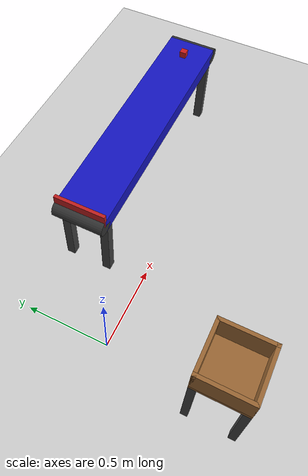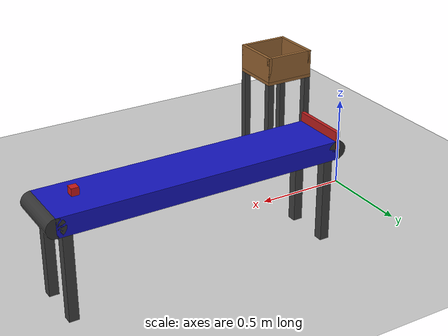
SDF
<?xml version="1.0" ?>
<sdf version="1.8">
  <world name="gripper_cell">
    <physics name="1ms" type="ignition.physics.sim" default="true">
      <max_step_size>0.001</max_step_size>
      <real_time_factor>1.0</real_time_factor>
    </physics>
    <plugin filename="gz-sim-physics-system" name="gz::sim::systems::Physics">
      <gravity>0 0 -9.81</gravity>
    </plugin>
    <plugin filename="gz-sim-scene-broadcaster-system" name="gz::sim::systems::SceneBroadcaster"/>
    <plugin filename="gz-sim-user-commands-system" name="gz::sim::systems::UserCommands"/>
    <plugin filename="gz-sim-contact-system" name="gz::sim::systems::Contact"/>
    <scene>
      <ambient>1.0 1.0 1.0</ambient>
      <background>0.8 0.8 0.8</background>
      <grid>true</grid>
    </scene>
    <light type="directional" name="sun">
      <cast_shadows>true</cast_shadows>
      <pose>0 0 10 0 0 0</pose>
      <diffuse>0.8 0.8 0.8 1</diffuse>
      <specular>0.2 0.2 0.2 1</specular>
      <direction>-0.5 0.1 -0.9</direction>
    </light>
    <model name="ground_plane">
      <static>true</static>
      <link name="link">
        <collision name="collision">
          <geometry>
            <plane>
              <normal>0 0 1</normal>
              <size>100 100</size>
            </plane>
          </geometry>
        </collision>
        <visual name="visual">
          <geometry>
            <plane>
              <normal>0 0 1</normal>
              <size>100 100</size>
            </plane>
          </geometry>
          <material>
            <ambient>0.8 0.8 0.8 1</ambient>
            <diffuse>0.8 0.8 0.8 1</diffuse>
          </material>
        </visual>
      </link>
    </model>

    <model name="belt_track">
      <pose>1.15 0.35 0 0 0 0</pose>
      <static>1</static>
      <link name="base_link">
        <pose>0 0 0.50 0 0 0</pose>
        <collision name="belt_col">
          <geometry><box><size>1.5 0.30 0.10</size></box></geometry>
          <surface><friction><ode><mu>0.7</mu><mu2>150</mu2><fdir1>0 1 0</fdir1></ode></friction></surface>
        </collision>
        <visual name="belt_vis">
          <geometry><box><size>1.5 0.30 0.10</size></box></geometry>
          <material><ambient>0.05 0.05 0.6 1</ambient><diffuse>0.08 0.08 0.75 1</diffuse></material>
        </visual>
        <!-- end rollers: radius = belt_height/2 = 0.05 -> flush with belt top -->
        <collision name="roll_a_col">
          <pose>0.75 0 0 -1.5708 0 0</pose>
          <geometry><cylinder><length>0.30</length><radius>0.05</radius></cylinder></geometry>
        </collision>
        <visual name="roll_a_vis">
          <pose>0.75 0 0 -1.5708 0 0</pose>
          <geometry><cylinder><length>0.30</length><radius>0.05</radius></cylinder></geometry>
          <material><ambient>0.2 0.2 0.2 1</ambient><diffuse>0.2 0.2 0.2 1</diffuse></material>
        </visual>
        <collision name="roll_b_col">
          <pose>-0.75 0 0 -1.5708 0 0</pose>
          <geometry><cylinder><length>0.30</length><radius>0.05</radius></cylinder></geometry>
        </collision>
        <visual name="roll_b_vis">
          <pose>-0.75 0 0 -1.5708 0 0</pose>
          <geometry><cylinder><length>0.30</length><radius>0.05</radius></cylinder></geometry>
          <material><ambient>0.2 0.2 0.2 1</ambient><diffuse>0.2 0.2 0.2 1</diffuse></material>
        </visual>
      </link>
      <!-- support legs (visual only), floor -> belt underside at z=0.45 -->
      <link name="leg_1"><pose>0.7 0.12 0.225 0 0 0</pose><visual name="v"><geometry><box><size>0.05 0.05 0.45</size></box></geometry><material><ambient>0.25 0.25 0.25 1</ambient><diffuse>0.25 0.25 0.25 1</diffuse></material></visual></link>
      <link name="leg_2"><pose>0.7 -0.12 0.225 0 0 0</pose><visual name="v"><geometry><box><size>0.05 0.05 0.45</size></box></geometry><material><ambient>0.25 0.25 0.25 1</ambient><diffuse>0.25 0.25 0.25 1</diffuse></material></visual></link>
      <link name="leg_3"><pose>-0.7 0.12 0.225 0 0 0</pose><visual name="v"><geometry><box><size>0.05 0.05 0.45</size></box></geometry><material><ambient>0.25 0.25 0.25 1</ambient><diffuse>0.25 0.25 0.25 1</diffuse></material></visual></link>
      <link name="leg_4"><pose>-0.7 -0.12 0.225 0 0 0</pose><visual name="v"><geometry><box><size>0.05 0.05 0.45</size></box></geometry><material><ambient>0.25 0.25 0.25 1</ambient><diffuse>0.25 0.25 0.25 1</diffuse></material></visual></link>
      <plugin filename="gz-sim-track-controller-system" name="gz::sim::systems::TrackController">
        <link>base_link</link>
      </plugin>
    </model>

    <model name="conveyor_end_stop">
      <static>true</static>
      <pose>0.40 0.35 0 0 0 0</pose>
      <link name="stop">
        <pose>0 0 0.55 0 0 0</pose>
        <collision name="collision">
          <geometry><box><size>0.02 0.30 0.10</size></box></geometry>
        </collision>
        <sensor name="end_contact" type="contact">
          <contact><collision>collision</collision></contact>
          <update_rate>30</update_rate>
          <always_on>true</always_on>
        </sensor>
        <visual name="visual">
          <geometry><box><size>0.02 0.30 0.10</size></box></geometry>
          <material><ambient>0.6 0.1 0.1 1</ambient><diffuse>0.75 0.12 0.12 1</diffuse></material>
        </visual>
      </link>
    </model>

    <model name="collection_box">
      <static>true</static>
      <pose>0.0 -0.65 0.45 0 0 0</pose>
      <link name="bottom">
        <pose>0 0 0.01 0 0 0</pose>
        <collision name="collision"><geometry><box><size>0.30 0.30 0.02</size></box></geometry></collision>
        <visual name="visual">
          <geometry><box><size>0.30 0.30 0.02</size></box></geometry>
          <material><ambient>0.6 0.4 0.2 1</ambient><diffuse>0.6 0.4 0.2 1</diffuse></material>
        </visual>
      </link>
      <link name="wall_pos_x">
        <pose>0.14 0 0.095 0 0 0</pose>
        <collision name="collision"><geometry><box><size>0.02 0.30 0.15</size></box></geometry></collision>
        <visual name="visual">
          <geometry><box><size>0.02 0.30 0.15</size></box></geometry>
          <material><ambient>0.6 0.4 0.2 1</ambient><diffuse>0.6 0.4 0.2 1</diffuse></material>
        </visual>
      </link>
      <link name="wall_neg_x">
        <pose>-0.14 0 0.095 0 0 0</pose>
        <collision name="collision"><geometry><box><size>0.02 0.30 0.15</size></box></geometry></collision>
        <visual name="visual">
          <geometry><box><size>0.02 0.30 0.15</size></box></geometry>
          <material><ambient>0.6 0.4 0.2 1</ambient><diffuse>0.6 0.4 0.2 1</diffuse></material>
        </visual>
      </link>
      <link name="wall_pos_y">
        <pose>0 0.14 0.095 0 0 0</pose>
        <collision name="collision"><geometry><box><size>0.30 0.02 0.15</size></box></geometry></collision>
        <visual name="visual">
          <geometry><box><size>0.30 0.02 0.15</size></box></geometry>
          <material><ambient>0.6 0.4 0.2 1</ambient><diffuse>0.6 0.4 0.2 1</diffuse></material>
        </visual>
      </link>
      <link name="wall_neg_y">
        <pose>0 -0.14 0.095 0 0 0</pose>
        <collision name="collision"><geometry><box><size>0.30 0.02 0.15</size></box></geometry></collision>
        <visual name="visual">
          <geometry><box><size>0.30 0.02 0.15</size></box></geometry>
          <material><ambient>0.6 0.4 0.2 1</ambient><diffuse>0.6 0.4 0.2 1</diffuse></material>
        </visual>
      </link>
      <!-- Pedestal: 4 legs from the crate underside (z=0 in model frame, i.e. world 0.45)
           down to the floor (world 0). -->
      <link name="ped_1"><pose>0.13 0.13 -0.225 0 0 0</pose><collision name="c"><geometry><box><size>0.04 0.04 0.45</size></box></geometry></collision><visual name="v"><geometry><box><size>0.04 0.04 0.45</size></box></geometry><material><ambient>0.25 0.25 0.25 1</ambient><diffuse>0.25 0.25 0.25 1</diffuse></material></visual></link>
      <link name="ped_2"><pose>0.13 -0.13 -0.225 0 0 0</pose><collision name="c"><geometry><box><size>0.04 0.04 0.45</size></box></geometry></collision><visual name="v"><geometry><box><size>0.04 0.04 0.45</size></box></geometry><material><ambient>0.25 0.25 0.25 1</ambient><diffuse>0.25 0.25 0.25 1</diffuse></material></visual></link>
      <link name="ped_3"><pose>-0.13 0.13 -0.225 0 0 0</pose><collision name="c"><geometry><box><size>0.04 0.04 0.45</size></box></geometry></collision><visual name="v"><geometry><box><size>0.04 0.04 0.45</size></box></geometry><material><ambient>0.25 0.25 0.25 1</ambient><diffuse>0.25 0.25 0.25 1</diffuse></material></visual></link>
      <link name="ped_4"><pose>-0.13 -0.13 -0.225 0 0 0</pose><collision name="c"><geometry><box><size>0.04 0.04 0.45</size></box></geometry></collision><visual name="v"><geometry><box><size>0.04 0.04 0.45</size></box></geometry><material><ambient>0.25 0.25 0.25 1</ambient><diffuse>0.25 0.25 0.25 1</diffuse></material></visual></link>
    </model>

    <!-- One workpiece, spawned at the belt's feed (high-X) end. The belt carries it along
         -X to the end stop, where the sensor fires and the robot picks it. -->
    <model name="workpiece_1">
      <pose>1.75 0.35 0.58 0 0 0</pose>
      <link name="link">
        <inertial>
          <mass>0.05</mass>
          <inertia><ixx>0.00002</ixx><iyy>0.00002</iyy><izz>0.00002</izz><ixy>0</ixy><ixz>0</ixz><iyz>0</iyz></inertia>
        </inertial>
        <collision name="collision">
          <geometry><box><size>0.04 0.04 0.04</size></box></geometry>
          <surface>
            <friction>
              <ode><mu>50</mu><mu2>50</mu2></ode>
            </friction>
          </surface>
        </collision>
        <visual name="visual">
          <geometry><box><size>0.04 0.04 0.04</size></box></geometry>
          <material>
            <ambient>0.8 0.1 0.1 1</ambient>
            <diffuse>0.8 0.1 0.1 1</diffuse>
          </material>
        </visual>
      </link>
    </model>
  </world>
</sdf>
